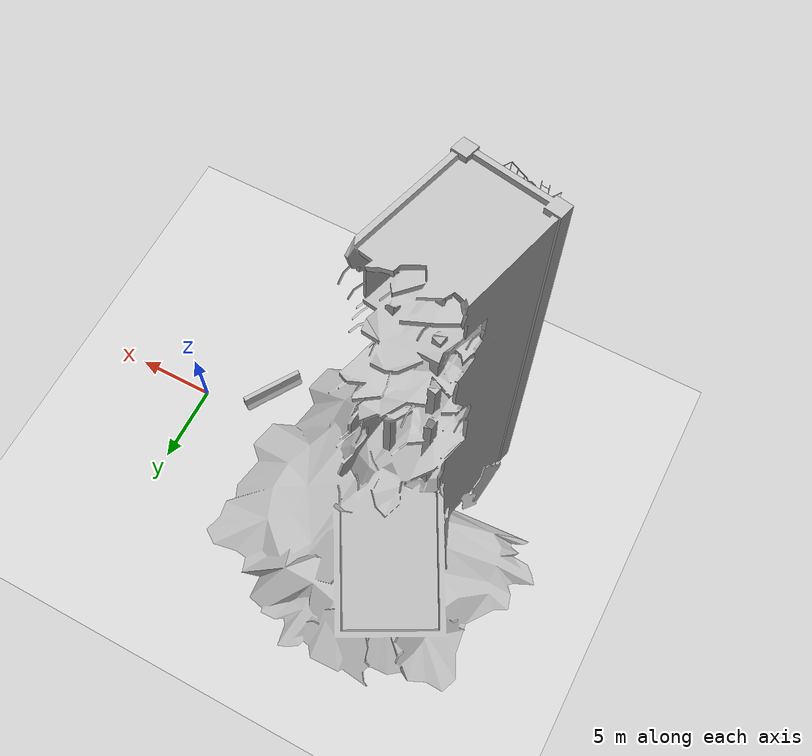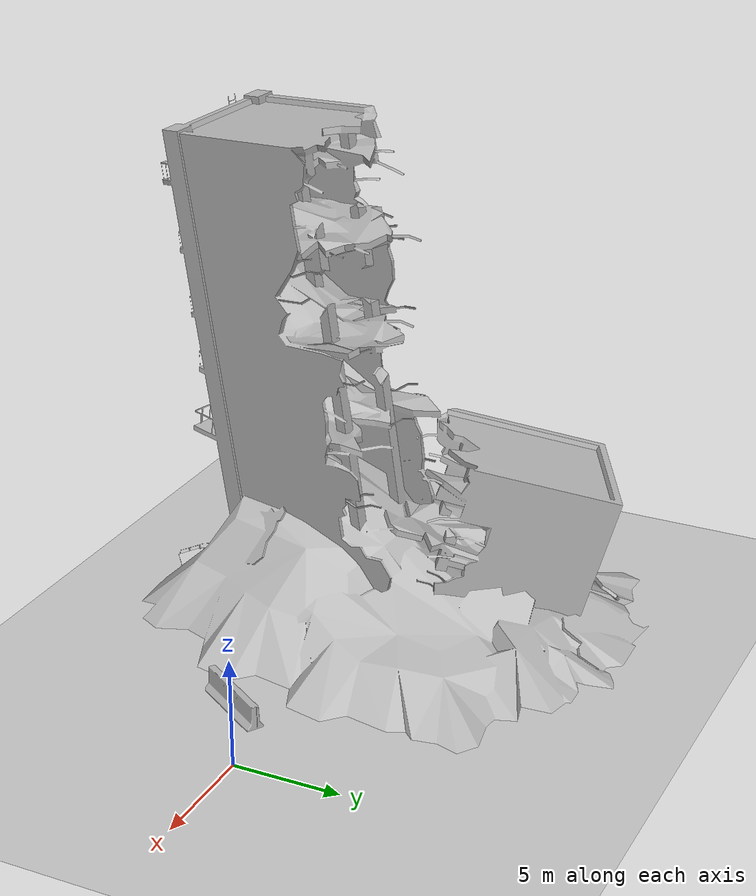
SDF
<sdf version="1.6">
 <world name="default">
  <model name="ground_plane">
   <static>1</static>
   <link name="link">
    <collision name="collision">
     <geometry><plane><normal>0 0 1</normal><size>100 100</size></plane></geometry>
     <surface><friction><ode><mu>100</mu><mu2>50</mu2></ode></friction></surface>
    </collision>
    <visual name="visual">
     <cast_shadows>0</cast_shadows>
     <geometry><plane><normal>0 0 1</normal><size>100 100</size></plane></geometry>
     <material>
      <script><uri>file://media/materials/scripts/gazebo.material</uri><name>Gazebo/Grey</name></script>
     </material>
    </visual>
   </link>
  </model>
  <model name="collapsed_industrial">
   <static>1</static>
   <link name="link">
    <collision name="collision">
     <geometry><mesh><uri>model://collapsed_industrial/meshes/collapsed_industrial.dae</uri></mesh></geometry>
    </collision>
    <visual name="visual">
     <geometry><mesh><uri>model://collapsed_industrial/meshes/collapsed_industrial.dae</uri></mesh></geometry>
    </visual>
   </link>
   <pose>-14.0067 -0.103419 0 0 -0 1.33365</pose>
  </model>
  <model name="jersey_barrier_0">
   <static>1</static>
   <link name="link">
    <visual name="visual">
     <geometry><mesh><uri>model://jersey_barrier/meshes/jersey_barrier.dae</uri></mesh></geometry>
    </visual>
    <collision name="upright">
     <pose>0 0 0.5715 0 -0 0</pose>
     <geometry><box><size>4.06542 0.3063 1.143</size></box></geometry>
    </collision>
    <collision name="base">
     <pose>0 0 0.032258 0 -0 0</pose>
     <geometry><box><size>4.06542 0.8107 0.064516</size></box></geometry>
    </collision>
    <collision name="base2">
     <pose>0 0 0.1 0 -0 0</pose>
     <geometry><box><size>4.06542 0.65 0.1</size></box></geometry>
    </collision>
    <collision name="base3">
     <pose>0 0 0.2 0 -0 0</pose>
     <geometry><box><size>4.06542 0.5 0.1</size></box></geometry>
    </collision>
    <collision name="left-angle">
     <pose>0 -0.224 0.2401 0.9 -0 0</pose>
     <geometry><box><size>4.06542 0.5 0.064516</size></box></geometry>
    </collision>
    <collision name="right-angle">
     <pose>0 0.224 0.2401 -0.9 0 0</pose>
     <geometry><box><size>4.06542 0.5 0.064516</size></box></geometry>
    </collision>
   </link>
   <pose>-3.83767 -2.1374 0 0 -0 1.00568</pose>
  </model>
 </world>
</sdf>
